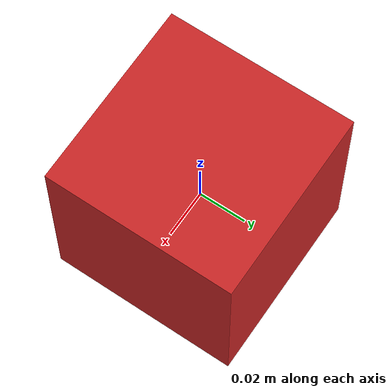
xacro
<?xml version="1.0"?>
<robot xmlns:xacro="http://www.ros.org/wiki/xacro" name="kinect">
<xacro:property name="camera_link" value="0.08" /> <!-- Size of square 'camera' box -->
<xacro:property name="M_PI" value="3.1415" />

    <link name="camera_link">
    <collision>
      <origin xyz="0 0 2" rpy="0 0 0"/>
      <geometry>
    <box size="${camera_link} ${camera_link} ${camera_link}"/>
      </geometry>
    </collision>

    <visual>
      <origin xyz="0 0 0" rpy="0 0 0"/>
      <geometry>
    <box size="${camera_link} ${camera_link} ${camera_link}"/>
      </geometry>
      <material name="red"/>
    </visual>

    <inertial>
      <mass value="1e-5" />
      <origin xyz="0 0 0" rpy="0 0 0"/>
      <inertia ixx="1e-6" ixy="0" ixz="0" iyy="1e-6" iyz="0" izz="1e-6" />
    </inertial>
  </link>

    <gazebo reference="camera_link">
      <sensor type="depth" name="camera">
        <always_on>true</always_on>
        <update_rate>20.0</update_rate>
        <camera>
          <horizontal_fov>${60.0*M_PI/180.0}</horizontal_fov>
          <image>
            <format>R8G8B8</format>
            <width>640</width>
            <height>480</height>
          </image>
          <clip>
            <near>0.05</near>
            <far>8.0</far>
          </clip>
        </camera>
        <plugin name="kinect_camera" filename="libgazebo_ros_openni_kinect.so">
          <cameraName>camera</cameraName>
          <alwaysOn>true</alwaysOn>
          <updateRate>10</updateRate>
          <imageTopicName>rgb/image_raw</imageTopicName>
          <depthImageTopicName>depth/image_raw</depthImageTopicName>
          <pointCloudTopicName>depth/points</pointCloudTopicName>
          <cameraInfoTopicName>rgb/camera_info</cameraInfoTopicName>
          <depthImageCameraInfoTopicName>depth/camera_info</depthImageCameraInfoTopicName>
          <frameName>camera_depth_optical_frame</frameName>
          <baseline>0.1</baseline>
          <distortion_k1>0.0</distortion_k1>
          <distortion_k2>0.0</distortion_k2>
          <distortion_k3>0.0</distortion_k3>
          <distortion_t1>0.0</distortion_t1>
          <distortion_t2>0.0</distortion_t2>
          <pointCloudCutoff>0.4</pointCloudCutoff>
        </plugin>
      </sensor>
    </gazebo>
    </robot>
